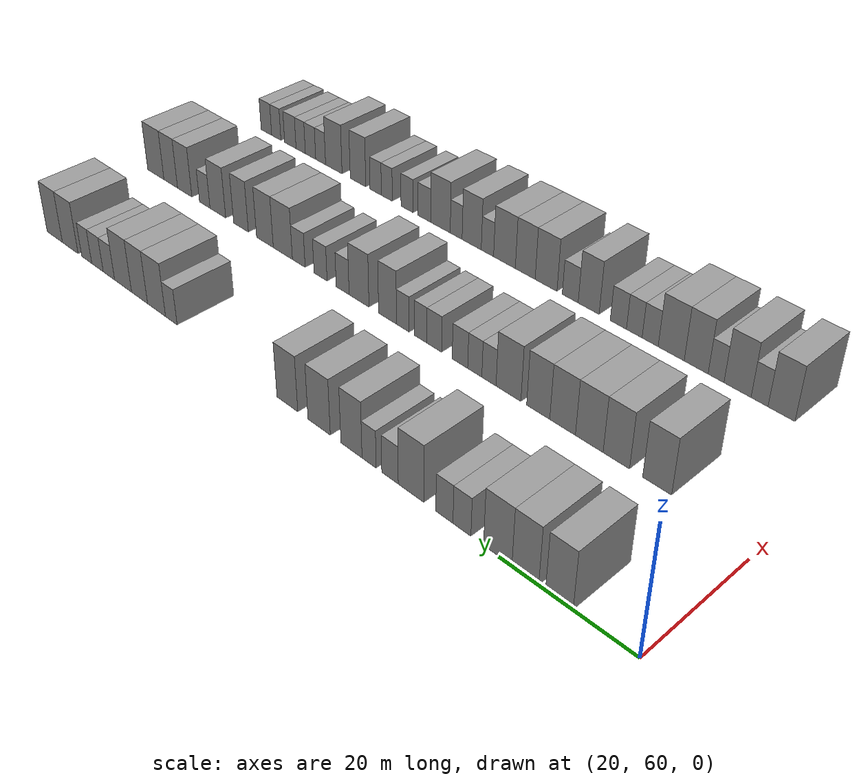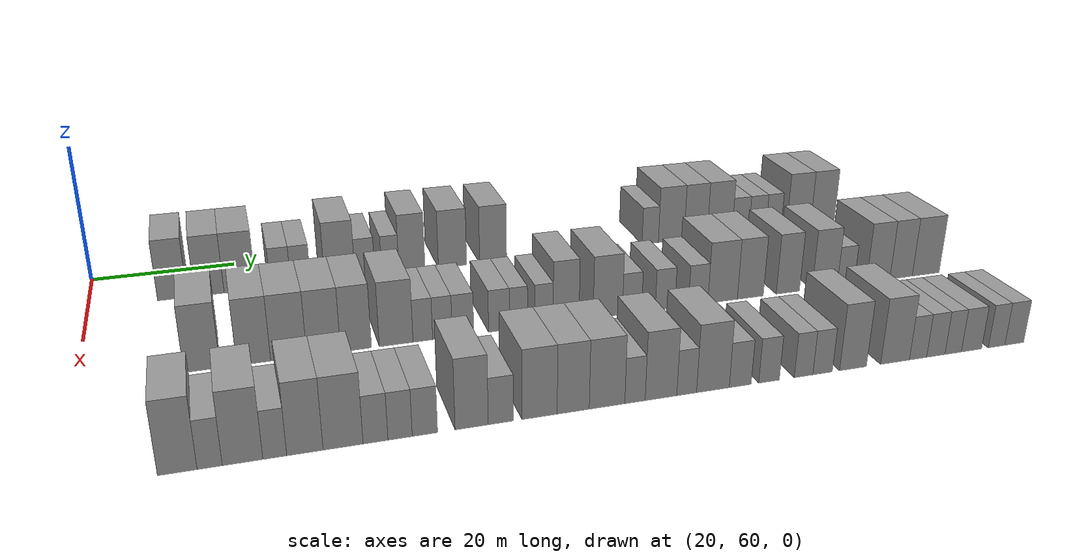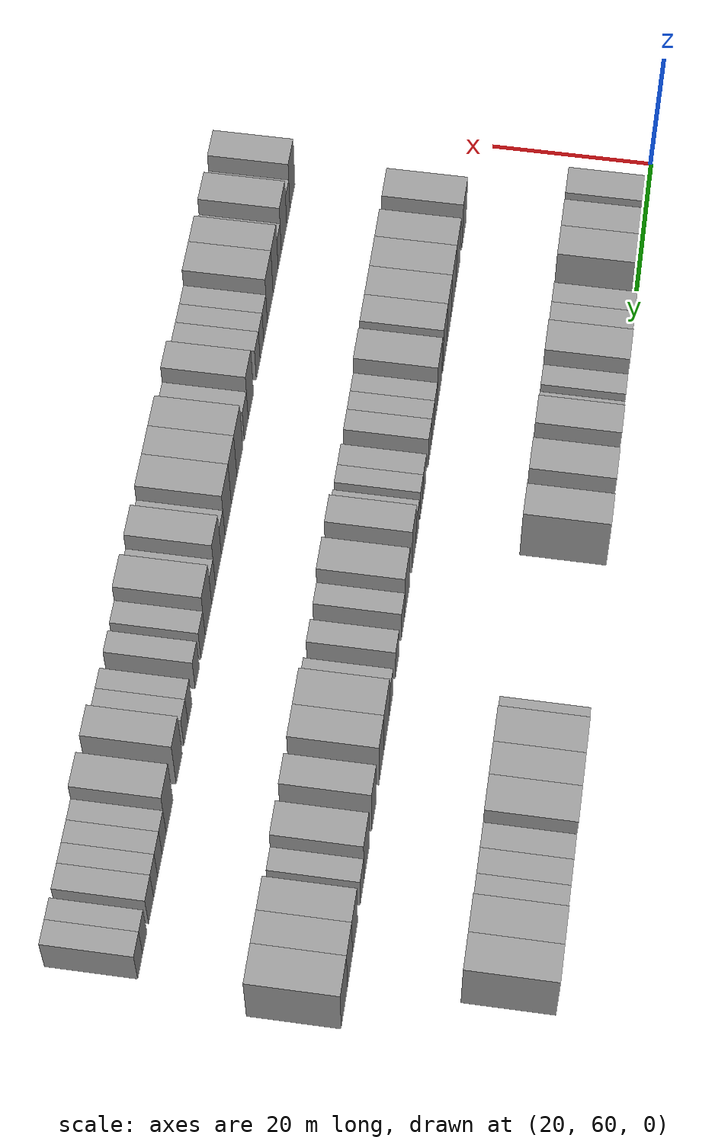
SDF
<sdf version="1.6">
 <world name="default">
  <model name="building_113">
   <static>1</static>
   <pose>25.0000 71.1456 0 0.000000 0.000000 0.000000</pose>
   <link name="link">
    <pose>0 0 4.50 0 0 0</pose>
    <collision name="collision"><geometry><box><size>10.0000 3.9665 9.0000</size></box></geometry></collision>
    <visual name="visual">
     <cast_shadows>0</cast_shadows>
     <geometry><box><size>10.0000 3.9665 9.0000</size></box></geometry>
     <material>
      <script>
       <uri>model://grey_wall/materials/scripts</uri>
       <uri>model://grey_wall/materials/textures</uri>
       <name>vrc/grey_wall</name>
      </script>
     </material>
    </visual>
   </link>
  </model>
  <model name="building_114">
   <static>1</static>
   <pose>25.0000 76.1323 0 0.000000 0.000000 0.000000</pose>
   <link name="link">
    <pose>0 0 4.50 0 0 0</pose>
    <collision name="collision"><geometry><box><size>10.0000 4.0069 9.0000</size></box></geometry></collision>
    <visual name="visual">
     <cast_shadows>0</cast_shadows>
     <geometry><box><size>10.0000 4.0069 9.0000</size></box></geometry>
     <material>
      <script>
       <uri>model://grey_wall/materials/scripts</uri>
       <uri>model://grey_wall/materials/textures</uri>
       <name>vrc/grey_wall</name>
      </script>
     </material>
    </visual>
   </link>
  </model>
  <model name="building_115">
   <static>1</static>
   <pose>25.0000 80.3190 0 0.000000 0.000000 0.000000</pose>
   <link name="link">
    <pose>0 0 4.50 0 0 0</pose>
    <collision name="collision"><geometry><box><size>10.0000 4.3665 9.0000</size></box></geometry></collision>
    <visual name="visual">
     <cast_shadows>0</cast_shadows>
     <geometry><box><size>10.0000 4.3665 9.0000</size></box></geometry>
     <material>
      <script>
       <uri>model://grey_wall/materials/scripts</uri>
       <uri>model://grey_wall/materials/textures</uri>
       <name>vrc/grey_wall</name>
      </script>
     </material>
    </visual>
   </link>
  </model>
  <model name="building_116">
   <static>1</static>
   <pose>25.0000 85.9456 0 0.000000 0.000000 0.000000</pose>
   <link name="link">
    <pose>0 0 3.00 0 0 0</pose>
    <collision name="collision"><geometry><box><size>10.0000 2.8868 6.0000</size></box></geometry></collision>
    <visual name="visual">
     <cast_shadows>0</cast_shadows>
     <geometry><box><size>10.0000 2.8868 6.0000</size></box></geometry>
     <material>
      <script>
       <uri>model://grey_wall/materials/scripts</uri>
       <uri>model://grey_wall/materials/textures</uri>
       <name>vrc/grey_wall</name>
      </script>
     </material>
    </visual>
   </link>
  </model>
  <model name="building_117">
   <static>1</static>
   <pose>25.0000 88.7950 0 0.000000 0.000000 0.000000</pose>
   <link name="link">
    <pose>0 0 3.00 0 0 0</pose>
    <collision name="collision"><geometry><box><size>10.0000 2.8119 6.0000</size></box></geometry></collision>
    <visual name="visual">
     <cast_shadows>0</cast_shadows>
     <geometry><box><size>10.0000 2.8119 6.0000</size></box></geometry>
     <material>
      <script>
       <uri>model://grey_wall/materials/scripts</uri>
       <uri>model://grey_wall/materials/textures</uri>
       <name>vrc/grey_wall</name>
      </script>
     </material>
    </visual>
   </link>
  </model>
  <model name="building_118">
   <static>1</static>
   <pose>25.0000 94.3874 0 0.000000 0.000000 0.000000</pose>
   <link name="link">
    <pose>0 0 4.50 0 0 0</pose>
    <collision name="collision"><geometry><box><size>10.0000 4.3730 9.0000</size></box></geometry></collision>
    <visual name="visual">
     <cast_shadows>0</cast_shadows>
     <geometry><box><size>10.0000 4.3730 9.0000</size></box></geometry>
     <material>
      <script>
       <uri>model://grey_wall/materials/scripts</uri>
       <uri>model://grey_wall/materials/textures</uri>
       <name>vrc/grey_wall</name>
      </script>
     </material>
    </visual>
   </link>
  </model>
  <model name="building_119">
   <static>1</static>
   <pose>25.0000 98.0199 0 0.000000 0.000000 0.000000</pose>
   <link name="link">
    <pose>0 0 3.00 0 0 0</pose>
    <collision name="collision"><geometry><box><size>10.0000 2.8920 6.0000</size></box></geometry></collision>
    <visual name="visual">
     <cast_shadows>0</cast_shadows>
     <geometry><box><size>10.0000 2.8920 6.0000</size></box></geometry>
     <material>
      <script>
       <uri>model://grey_wall/materials/scripts</uri>
       <uri>model://grey_wall/materials/textures</uri>
       <name>vrc/grey_wall</name>
      </script>
     </material>
    </visual>
   </link>
  </model>
  <model name="building_120">
   <static>1</static>
   <pose>25.0000 101.7340 0 0.000000 0.000000 0.000000</pose>
   <link name="link">
    <pose>0 0 3.00 0 0 0</pose>
    <collision name="collision"><geometry><box><size>10.0000 2.5364 6.0000</size></box></geometry></collision>
    <visual name="visual">
     <cast_shadows>0</cast_shadows>
     <geometry><box><size>10.0000 2.5364 6.0000</size></box></geometry>
     <material>
      <script>
       <uri>model://grey_wall/materials/scripts</uri>
       <uri>model://grey_wall/materials/textures</uri>
       <name>vrc/grey_wall</name>
      </script>
     </material>
    </visual>
   </link>
  </model>
  <model name="building_121">
   <static>1</static>
   <pose>25.0000 104.9441 0 0.000000 0.000000 0.000000</pose>
   <link name="link">
    <pose>0 0 4.50 0 0 0</pose>
    <collision name="collision"><geometry><box><size>10.0000 3.8837 9.0000</size></box></geometry></collision>
    <visual name="visual">
     <cast_shadows>0</cast_shadows>
     <geometry><box><size>10.0000 3.8837 9.0000</size></box></geometry>
     <material>
      <script>
       <uri>model://grey_wall/materials/scripts</uri>
       <uri>model://grey_wall/materials/textures</uri>
       <name>vrc/grey_wall</name>
      </script>
     </material>
    </visual>
   </link>
  </model>
  <model name="building_122">
   <static>1</static>
   <pose>25.0000 111.0240 0 0.000000 0.000000 0.000000</pose>
   <link name="link">
    <pose>0 0 4.50 0 0 0</pose>
    <collision name="collision"><geometry><box><size>10.0000 4.2762 9.0000</size></box></geometry></collision>
    <visual name="visual">
     <cast_shadows>0</cast_shadows>
     <geometry><box><size>10.0000 4.2762 9.0000</size></box></geometry>
     <material>
      <script>
       <uri>model://grey_wall/materials/scripts</uri>
       <uri>model://grey_wall/materials/textures</uri>
       <name>vrc/grey_wall</name>
      </script>
     </material>
    </visual>
   </link>
  </model>
  <model name="building_123">
   <static>1</static>
   <pose>25.0000 117.2384 0 0.000000 0.000000 0.000000</pose>
   <link name="link">
    <pose>0 0 4.50 0 0 0</pose>
    <collision name="collision"><geometry><box><size>10.0000 4.1526 9.0000</size></box></geometry></collision>
    <visual name="visual">
     <cast_shadows>0</cast_shadows>
     <geometry><box><size>10.0000 4.1526 9.0000</size></box></geometry>
     <material>
      <script>
       <uri>model://grey_wall/materials/scripts</uri>
       <uri>model://grey_wall/materials/textures</uri>
       <name>vrc/grey_wall</name>
      </script>
     </material>
    </visual>
   </link>
  </model>
  <model name="building_124">
   <static>1</static>
   <pose>25.0000 142.3898 0 0.000000 0.000000 0.000000</pose>
   <link name="link">
    <pose>0 0 3.00 0 0 0</pose>
    <collision name="collision"><geometry><box><size>10.0000 2.7167 6.0000</size></box></geometry></collision>
    <visual name="visual">
     <cast_shadows>0</cast_shadows>
     <geometry><box><size>10.0000 2.7167 6.0000</size></box></geometry>
     <material>
      <script>
       <uri>model://grey_wall/materials/scripts</uri>
       <uri>model://grey_wall/materials/textures</uri>
       <name>vrc/grey_wall</name>
      </script>
     </material>
    </visual>
   </link>
  </model>
  <model name="building_125">
   <static>1</static>
   <pose>25.0000 145.9043 0 0.000000 0.000000 0.000000</pose>
   <link name="link">
    <pose>0 0 4.50 0 0 0</pose>
    <collision name="collision"><geometry><box><size>10.0000 4.3124 9.0000</size></box></geometry></collision>
    <visual name="visual">
     <cast_shadows>0</cast_shadows>
     <geometry><box><size>10.0000 4.3124 9.0000</size></box></geometry>
     <material>
      <script>
       <uri>model://grey_wall/materials/scripts</uri>
       <uri>model://grey_wall/materials/textures</uri>
       <name>vrc/grey_wall</name>
      </script>
     </material>
    </visual>
   </link>
  </model>
  <model name="building_126">
   <static>1</static>
   <pose>25.0000 150.0240 0 0.000000 0.000000 0.000000</pose>
   <link name="link">
    <pose>0 0 4.50 0 0 0</pose>
    <collision name="collision"><geometry><box><size>10.0000 3.9271 9.0000</size></box></geometry></collision>
    <visual name="visual">
     <cast_shadows>0</cast_shadows>
     <geometry><box><size>10.0000 3.9271 9.0000</size></box></geometry>
     <material>
      <script>
       <uri>model://grey_wall/materials/scripts</uri>
       <uri>model://grey_wall/materials/textures</uri>
       <name>vrc/grey_wall</name>
      </script>
     </material>
    </visual>
   </link>
  </model>
  <model name="building_127">
   <static>1</static>
   <pose>25.0000 154.1258 0 0.000000 0.000000 0.000000</pose>
   <link name="link">
    <pose>0 0 4.50 0 0 0</pose>
    <collision name="collision"><geometry><box><size>10.0000 4.2764 9.0000</size></box></geometry></collision>
    <visual name="visual">
     <cast_shadows>0</cast_shadows>
     <geometry><box><size>10.0000 4.2764 9.0000</size></box></geometry>
     <material>
      <script>
       <uri>model://grey_wall/materials/scripts</uri>
       <uri>model://grey_wall/materials/textures</uri>
       <name>vrc/grey_wall</name>
      </script>
     </material>
    </visual>
   </link>
  </model>
  <model name="building_128">
   <static>1</static>
   <pose>25.0000 157.7301 0 0.000000 0.000000 0.000000</pose>
   <link name="link">
    <pose>0 0 3.00 0 0 0</pose>
    <collision name="collision"><geometry><box><size>10.0000 2.9322 6.0000</size></box></geometry></collision>
    <visual name="visual">
     <cast_shadows>0</cast_shadows>
     <geometry><box><size>10.0000 2.9322 6.0000</size></box></geometry>
     <material>
      <script>
       <uri>model://grey_wall/materials/scripts</uri>
       <uri>model://grey_wall/materials/textures</uri>
       <name>vrc/grey_wall</name>
      </script>
     </material>
    </visual>
   </link>
  </model>
  <model name="building_129">
   <static>1</static>
   <pose>25.0000 160.6939 0 0.000000 0.000000 0.000000</pose>
   <link name="link">
    <pose>0 0 3.00 0 0 0</pose>
    <collision name="collision"><geometry><box><size>10.0000 2.9956 6.0000</size></box></geometry></collision>
    <visual name="visual">
     <cast_shadows>0</cast_shadows>
     <geometry><box><size>10.0000 2.9956 6.0000</size></box></geometry>
     <material>
      <script>
       <uri>model://grey_wall/materials/scripts</uri>
       <uri>model://grey_wall/materials/textures</uri>
       <name>vrc/grey_wall</name>
      </script>
     </material>
    </visual>
   </link>
  </model>
  <model name="building_130">
   <static>1</static>
   <pose>25.0000 163.5191 0 0.000000 0.000000 0.000000</pose>
   <link name="link">
    <pose>0 0 3.00 0 0 0</pose>
    <collision name="collision"><geometry><box><size>10.0000 2.6548 6.0000</size></box></geometry></collision>
    <visual name="visual">
     <cast_shadows>0</cast_shadows>
     <geometry><box><size>10.0000 2.6548 6.0000</size></box></geometry>
     <material>
      <script>
       <uri>model://grey_wall/materials/scripts</uri>
       <uri>model://grey_wall/materials/textures</uri>
       <name>vrc/grey_wall</name>
      </script>
     </material>
    </visual>
   </link>
  </model>
  <model name="building_131">
   <static>1</static>
   <pose>25.0000 167.9849 0 0.000000 0.000000 0.000000</pose>
   <link name="link">
    <pose>0 0 4.50 0 0 0</pose>
    <collision name="collision"><geometry><box><size>10.0000 4.2767 9.0000</size></box></geometry></collision>
    <visual name="visual">
     <cast_shadows>0</cast_shadows>
     <geometry><box><size>10.0000 4.2767 9.0000</size></box></geometry>
     <material>
      <script>
       <uri>model://grey_wall/materials/scripts</uri>
       <uri>model://grey_wall/materials/textures</uri>
       <name>vrc/grey_wall</name>
      </script>
     </material>
    </visual>
   </link>
  </model>
  <model name="building_132">
   <static>1</static>
   <pose>25.0000 172.2452 0 0.000000 0.000000 0.000000</pose>
   <link name="link">
    <pose>0 0 4.50 0 0 0</pose>
    <collision name="collision"><geometry><box><size>10.0000 4.2440 9.0000</size></box></geometry></collision>
    <visual name="visual">
     <cast_shadows>0</cast_shadows>
     <geometry><box><size>10.0000 4.2440 9.0000</size></box></geometry>
     <material>
      <script>
       <uri>model://grey_wall/materials/scripts</uri>
       <uri>model://grey_wall/materials/textures</uri>
       <name>vrc/grey_wall</name>
      </script>
     </material>
    </visual>
   </link>
  </model>
  <model name="building_301">
   <static>1</static>
   <pose>47.0000 74.5888 0 0.000000 0.000000 0.000000</pose>
   <link name="link">
    <pose>0 0 4.50 0 0 0</pose>
    <collision name="collision"><geometry><box><size>10.0000 4.3350 9.0000</size></box></geometry></collision>
    <visual name="visual">
     <cast_shadows>0</cast_shadows>
     <geometry><box><size>10.0000 4.3350 9.0000</size></box></geometry>
     <material>
      <script>
       <uri>model://grey_wall/materials/scripts</uri>
       <uri>model://grey_wall/materials/textures</uri>
       <name>vrc/grey_wall</name>
      </script>
     </material>
    </visual>
   </link>
  </model>
  <model name="building_302">
   <static>1</static>
   <pose>47.0000 80.8239 0 0.000000 0.000000 0.000000</pose>
   <link name="link">
    <pose>0 0 4.50 0 0 0</pose>
    <collision name="collision"><geometry><box><size>10.0000 4.1350 9.0000</size></box></geometry></collision>
    <visual name="visual">
     <cast_shadows>0</cast_shadows>
     <geometry><box><size>10.0000 4.1350 9.0000</size></box></geometry>
     <material>
      <script>
       <uri>model://grey_wall/materials/scripts</uri>
       <uri>model://grey_wall/materials/textures</uri>
       <name>vrc/grey_wall</name>
      </script>
     </material>
    </visual>
   </link>
  </model>
  <model name="building_303">
   <static>1</static>
   <pose>47.0000 85.1183 0 0.000000 0.000000 0.000000</pose>
   <link name="link">
    <pose>0 0 4.50 0 0 0</pose>
    <collision name="collision"><geometry><box><size>10.0000 4.4538 9.0000</size></box></geometry></collision>
    <visual name="visual">
     <cast_shadows>0</cast_shadows>
     <geometry><box><size>10.0000 4.4538 9.0000</size></box></geometry>
     <material>
      <script>
       <uri>model://grey_wall/materials/scripts</uri>
       <uri>model://grey_wall/materials/textures</uri>
       <name>vrc/grey_wall</name>
      </script>
     </material>
    </visual>
   </link>
  </model>
  <model name="building_304">
   <static>1</static>
   <pose>47.0000 89.4703 0 0.000000 0.000000 0.000000</pose>
   <link name="link">
    <pose>0 0 4.50 0 0 0</pose>
    <collision name="collision"><geometry><box><size>10.0000 4.2503 9.0000</size></box></geometry></collision>
    <visual name="visual">
     <cast_shadows>0</cast_shadows>
     <geometry><box><size>10.0000 4.2503 9.0000</size></box></geometry>
     <material>
      <script>
       <uri>model://grey_wall/materials/scripts</uri>
       <uri>model://grey_wall/materials/textures</uri>
       <name>vrc/grey_wall</name>
      </script>
     </material>
    </visual>
   </link>
  </model>
  <model name="building_305">
   <static>1</static>
   <pose>47.0000 93.5619 0 0.000000 0.000000 0.000000</pose>
   <link name="link">
    <pose>0 0 4.50 0 0 0</pose>
    <collision name="collision"><geometry><box><size>10.0000 3.9329 9.0000</size></box></geometry></collision>
    <visual name="visual">
     <cast_shadows>0</cast_shadows>
     <geometry><box><size>10.0000 3.9329 9.0000</size></box></geometry>
     <material>
      <script>
       <uri>model://grey_wall/materials/scripts</uri>
       <uri>model://grey_wall/materials/textures</uri>
       <name>vrc/grey_wall</name>
      </script>
     </material>
    </visual>
   </link>
  </model>
  <model name="building_306">
   <static>1</static>
   <pose>47.0000 98.7184 0 0.000000 0.000000 0.000000</pose>
   <link name="link">
    <pose>0 0 4.50 0 0 0</pose>
    <collision name="collision"><geometry><box><size>10.0000 4.3802 9.0000</size></box></geometry></collision>
    <visual name="visual">
     <cast_shadows>0</cast_shadows>
     <geometry><box><size>10.0000 4.3802 9.0000</size></box></geometry>
     <material>
      <script>
       <uri>model://grey_wall/materials/scripts</uri>
       <uri>model://grey_wall/materials/textures</uri>
       <name>vrc/grey_wall</name>
      </script>
     </material>
    </visual>
   </link>
  </model>
  <model name="building_307">
   <static>1</static>
   <pose>47.0000 102.1914 0 0.000000 0.000000 0.000000</pose>
   <link name="link">
    <pose>0 0 3.00 0 0 0</pose>
    <collision name="collision"><geometry><box><size>10.0000 2.5658 6.0000</size></box></geometry></collision>
    <visual name="visual">
     <cast_shadows>0</cast_shadows>
     <geometry><box><size>10.0000 2.5658 6.0000</size></box></geometry>
     <material>
      <script>
       <uri>model://grey_wall/materials/scripts</uri>
       <uri>model://grey_wall/materials/textures</uri>
       <name>vrc/grey_wall</name>
      </script>
     </material>
    </visual>
   </link>
  </model>
  <model name="building_308">
   <static>1</static>
   <pose>47.0000 104.7711 0 0.000000 0.000000 0.000000</pose>
   <link name="link">
    <pose>0 0 3.00 0 0 0</pose>
    <collision name="collision"><geometry><box><size>10.0000 2.5935 6.0000</size></box></geometry></collision>
    <visual name="visual">
     <cast_shadows>0</cast_shadows>
     <geometry><box><size>10.0000 2.5935 6.0000</size></box></geometry>
     <material>
      <script>
       <uri>model://grey_wall/materials/scripts</uri>
       <uri>model://grey_wall/materials/textures</uri>
       <name>vrc/grey_wall</name>
      </script>
     </material>
    </visual>
   </link>
  </model>
  <model name="building_309">
   <static>1</static>
   <pose>47.0000 107.5105 0 0.000000 0.000000 0.000000</pose>
   <link name="link">
    <pose>0 0 3.00 0 0 0</pose>
    <collision name="collision"><geometry><box><size>10.0000 2.8855 6.0000</size></box></geometry></collision>
    <visual name="visual">
     <cast_shadows>0</cast_shadows>
     <geometry><box><size>10.0000 2.8855 6.0000</size></box></geometry>
     <material>
      <script>
       <uri>model://grey_wall/materials/scripts</uri>
       <uri>model://grey_wall/materials/textures</uri>
       <name>vrc/grey_wall</name>
      </script>
     </material>
    </visual>
   </link>
  </model>
  <model name="building_310">
   <static>1</static>
   <pose>47.0000 112.3788 0 0.000000 0.000000 0.000000</pose>
   <link name="link">
    <pose>0 0 3.00 0 0 0</pose>
    <collision name="collision"><geometry><box><size>10.0000 2.8510 6.0000</size></box></geometry></collision>
    <visual name="visual">
     <cast_shadows>0</cast_shadows>
     <geometry><box><size>10.0000 2.8510 6.0000</size></box></geometry>
     <material>
      <script>
       <uri>model://grey_wall/materials/scripts</uri>
       <uri>model://grey_wall/materials/textures</uri>
       <name>vrc/grey_wall</name>
      </script>
     </material>
    </visual>
   </link>
  </model>
  <model name="building_311">
   <static>1</static>
   <pose>47.0000 115.0303 0 0.000000 0.000000 0.000000</pose>
   <link name="link">
    <pose>0 0 3.00 0 0 0</pose>
    <collision name="collision"><geometry><box><size>10.0000 2.4521 6.0000</size></box></geometry></collision>
    <visual name="visual">
     <cast_shadows>0</cast_shadows>
     <geometry><box><size>10.0000 2.4521 6.0000</size></box></geometry>
     <material>
      <script>
       <uri>model://grey_wall/materials/scripts</uri>
       <uri>model://grey_wall/materials/textures</uri>
       <name>vrc/grey_wall</name>
      </script>
     </material>
    </visual>
   </link>
  </model>
  <model name="building_312">
   <static>1</static>
   <pose>47.0000 118.5335 0 0.000000 0.000000 0.000000</pose>
   <link name="link">
    <pose>0 0 3.00 0 0 0</pose>
    <collision name="collision"><geometry><box><size>10.0000 2.5543 6.0000</size></box></geometry></collision>
    <visual name="visual">
     <cast_shadows>0</cast_shadows>
     <geometry><box><size>10.0000 2.5543 6.0000</size></box></geometry>
     <material>
      <script>
       <uri>model://grey_wall/materials/scripts</uri>
       <uri>model://grey_wall/materials/textures</uri>
       <name>vrc/grey_wall</name>
      </script>
     </material>
    </visual>
   </link>
  </model>
  <model name="building_313">
   <static>1</static>
   <pose>47.0000 121.6259 0 0.000000 0.000000 0.000000</pose>
   <link name="link">
    <pose>0 0 4.50 0 0 0</pose>
    <collision name="collision"><geometry><box><size>10.0000 3.6306 9.0000</size></box></geometry></collision>
    <visual name="visual">
     <cast_shadows>0</cast_shadows>
     <geometry><box><size>10.0000 3.6306 9.0000</size></box></geometry>
     <material>
      <script>
       <uri>model://grey_wall/materials/scripts</uri>
       <uri>model://grey_wall/materials/textures</uri>
       <name>vrc/grey_wall</name>
      </script>
     </material>
    </visual>
   </link>
  </model>
  <model name="building_314">
   <static>1</static>
   <pose>47.0000 127.5316 0 0.000000 0.000000 0.000000</pose>
   <link name="link">
    <pose>0 0 4.50 0 0 0</pose>
    <collision name="collision"><geometry><box><size>10.0000 4.1809 9.0000</size></box></geometry></collision>
    <visual name="visual">
     <cast_shadows>0</cast_shadows>
     <geometry><box><size>10.0000 4.1809 9.0000</size></box></geometry>
     <material>
      <script>
       <uri>model://grey_wall/materials/scripts</uri>
       <uri>model://grey_wall/materials/textures</uri>
       <name>vrc/grey_wall</name>
      </script>
     </material>
    </visual>
   </link>
  </model>
  <model name="building_315">
   <static>1</static>
   <pose>47.0000 131.0111 0 0.000000 0.000000 0.000000</pose>
   <link name="link">
    <pose>0 0 3.00 0 0 0</pose>
    <collision name="collision"><geometry><box><size>10.0000 2.7779 6.0000</size></box></geometry></collision>
    <visual name="visual">
     <cast_shadows>0</cast_shadows>
     <geometry><box><size>10.0000 2.7779 6.0000</size></box></geometry>
     <material>
      <script>
       <uri>model://grey_wall/materials/scripts</uri>
       <uri>model://grey_wall/materials/textures</uri>
       <name>vrc/grey_wall</name>
      </script>
     </material>
    </visual>
   </link>
  </model>
  <model name="building_316">
   <static>1</static>
   <pose>47.0000 135.8465 0 0.000000 0.000000 0.000000</pose>
   <link name="link">
    <pose>0 0 3.00 0 0 0</pose>
    <collision name="collision"><geometry><box><size>10.0000 2.8929 6.0000</size></box></geometry></collision>
    <visual name="visual">
     <cast_shadows>0</cast_shadows>
     <geometry><box><size>10.0000 2.8929 6.0000</size></box></geometry>
     <material>
      <script>
       <uri>model://grey_wall/materials/scripts</uri>
       <uri>model://grey_wall/materials/textures</uri>
       <name>vrc/grey_wall</name>
      </script>
     </material>
    </visual>
   </link>
  </model>
  <model name="building_317">
   <static>1</static>
   <pose>47.0000 140.7449 0 0.000000 0.000000 0.000000</pose>
   <link name="link">
    <pose>0 0 3.00 0 0 0</pose>
    <collision name="collision"><geometry><box><size>10.0000 2.9039 6.0000</size></box></geometry></collision>
    <visual name="visual">
     <cast_shadows>0</cast_shadows>
     <geometry><box><size>10.0000 2.9039 6.0000</size></box></geometry>
     <material>
      <script>
       <uri>model://grey_wall/materials/scripts</uri>
       <uri>model://grey_wall/materials/textures</uri>
       <name>vrc/grey_wall</name>
      </script>
     </material>
    </visual>
   </link>
  </model>
  <model name="building_318">
   <static>1</static>
   <pose>47.0000 144.4257 0 0.000000 0.000000 0.000000</pose>
   <link name="link">
    <pose>0 0 4.50 0 0 0</pose>
    <collision name="collision"><geometry><box><size>10.0000 4.4578 9.0000</size></box></geometry></collision>
    <visual name="visual">
     <cast_shadows>0</cast_shadows>
     <geometry><box><size>10.0000 4.4578 9.0000</size></box></geometry>
     <material>
      <script>
       <uri>model://grey_wall/materials/scripts</uri>
       <uri>model://grey_wall/materials/textures</uri>
       <name>vrc/grey_wall</name>
      </script>
     </material>
    </visual>
   </link>
  </model>
  <model name="building_319">
   <static>1</static>
   <pose>47.0000 148.6413 0 0.000000 0.000000 0.000000</pose>
   <link name="link">
    <pose>0 0 4.50 0 0 0</pose>
    <collision name="collision"><geometry><box><size>10.0000 3.9733 9.0000</size></box></geometry></collision>
    <visual name="visual">
     <cast_shadows>0</cast_shadows>
     <geometry><box><size>10.0000 3.9733 9.0000</size></box></geometry>
     <material>
      <script>
       <uri>model://grey_wall/materials/scripts</uri>
       <uri>model://grey_wall/materials/textures</uri>
       <name>vrc/grey_wall</name>
      </script>
     </material>
    </visual>
   </link>
  </model>
  <model name="building_320">
   <static>1</static>
   <pose>47.0000 154.4402 0 0.000000 0.000000 0.000000</pose>
   <link name="link">
    <pose>0 0 4.50 0 0 0</pose>
    <collision name="collision"><geometry><box><size>10.0000 3.6245 9.0000</size></box></geometry></collision>
    <visual name="visual">
     <cast_shadows>0</cast_shadows>
     <geometry><box><size>10.0000 3.6245 9.0000</size></box></geometry>
     <material>
      <script>
       <uri>model://grey_wall/materials/scripts</uri>
       <uri>model://grey_wall/materials/textures</uri>
       <name>vrc/grey_wall</name>
      </script>
     </material>
    </visual>
   </link>
  </model>
  <model name="building_321">
   <static>1</static>
   <pose>47.0000 160.2484 0 0.000000 0.000000 0.000000</pose>
   <link name="link">
    <pose>0 0 4.50 0 0 0</pose>
    <collision name="collision"><geometry><box><size>10.0000 3.9920 9.0000</size></box></geometry></collision>
    <visual name="visual">
     <cast_shadows>0</cast_shadows>
     <geometry><box><size>10.0000 3.9920 9.0000</size></box></geometry>
     <material>
      <script>
       <uri>model://grey_wall/materials/scripts</uri>
       <uri>model://grey_wall/materials/textures</uri>
       <name>vrc/grey_wall</name>
      </script>
     </material>
    </visual>
   </link>
  </model>
  <model name="building_322">
   <static>1</static>
   <pose>47.0000 163.6041 0 0.000000 0.000000 0.000000</pose>
   <link name="link">
    <pose>0 0 3.00 0 0 0</pose>
    <collision name="collision"><geometry><box><size>10.0000 2.7194 6.0000</size></box></geometry></collision>
    <visual name="visual">
     <cast_shadows>0</cast_shadows>
     <geometry><box><size>10.0000 2.7194 6.0000</size></box></geometry>
     <material>
      <script>
       <uri>model://grey_wall/materials/scripts</uri>
       <uri>model://grey_wall/materials/textures</uri>
       <name>vrc/grey_wall</name>
      </script>
     </material>
    </visual>
   </link>
  </model>
  <model name="building_323">
   <static>1</static>
   <pose>47.0000 168.8767 0 0.000000 0.000000 0.000000</pose>
   <link name="link">
    <pose>0 0 4.50 0 0 0</pose>
    <collision name="collision"><geometry><box><size>10.0000 3.8259 9.0000</size></box></geometry></collision>
    <visual name="visual">
     <cast_shadows>0</cast_shadows>
     <geometry><box><size>10.0000 3.8259 9.0000</size></box></geometry>
     <material>
      <script>
       <uri>model://grey_wall/materials/scripts</uri>
       <uri>model://grey_wall/materials/textures</uri>
       <name>vrc/grey_wall</name>
      </script>
     </material>
    </visual>
   </link>
  </model>
  <model name="building_324">
   <static>1</static>
   <pose>47.0000 172.6374 0 0.000000 0.000000 0.000000</pose>
   <link name="link">
    <pose>0 0 4.50 0 0 0</pose>
    <collision name="collision"><geometry><box><size>10.0000 3.6955 9.0000</size></box></geometry></collision>
    <visual name="visual">
     <cast_shadows>0</cast_shadows>
     <geometry><box><size>10.0000 3.6955 9.0000</size></box></geometry>
     <material>
      <script>
       <uri>model://grey_wall/materials/scripts</uri>
       <uri>model://grey_wall/materials/textures</uri>
       <name>vrc/grey_wall</name>
      </script>
     </material>
    </visual>
   </link>
  </model>
  <model name="building_325">
   <static>1</static>
   <pose>47.0000 176.7284 0 0.000000 0.000000 0.000000</pose>
   <link name="link">
    <pose>0 0 4.50 0 0 0</pose>
    <collision name="collision"><geometry><box><size>10.0000 4.4867 9.0000</size></box></geometry></collision>
    <visual name="visual">
     <cast_shadows>0</cast_shadows>
     <geometry><box><size>10.0000 4.4867 9.0000</size></box></geometry>
     <material>
      <script>
       <uri>model://grey_wall/materials/scripts</uri>
       <uri>model://grey_wall/materials/textures</uri>
       <name>vrc/grey_wall</name>
      </script>
     </material>
    </visual>
   </link>
  </model>
  <model name="building_494">
   <static>1</static>
   <pose>69.0000 71.5320 0 0.000000 0.000000 0.000000</pose>
   <link name="link">
    <pose>0 0 4.50 0 0 0</pose>
    <collision name="collision"><geometry><box><size>10.0000 4.0279 9.0000</size></box></geometry></collision>
    <visual name="visual">
     <cast_shadows>0</cast_shadows>
     <geometry><box><size>10.0000 4.0279 9.0000</size></box></geometry>
     <material>
      <script>
       <uri>model://grey_wall/materials/scripts</uri>
       <uri>model://grey_wall/materials/textures</uri>
       <name>vrc/grey_wall</name>
      </script>
     </material>
    </visual>
   </link>
  </model>
  <model name="building_495">
   <static>1</static>
   <pose>69.0000 74.8431 0 0.000000 0.000000 0.000000</pose>
   <link name="link">
    <pose>0 0 3.00 0 0 0</pose>
    <collision name="collision"><geometry><box><size>10.0000 2.5943 6.0000</size></box></geometry></collision>
    <visual name="visual">
     <cast_shadows>0</cast_shadows>
     <geometry><box><size>10.0000 2.5943 6.0000</size></box></geometry>
     <material>
      <script>
       <uri>model://grey_wall/materials/scripts</uri>
       <uri>model://grey_wall/materials/textures</uri>
       <name>vrc/grey_wall</name>
      </script>
     </material>
    </visual>
   </link>
  </model>
  <model name="building_496">
   <static>1</static>
   <pose>69.0000 78.2550 0 0.000000 0.000000 0.000000</pose>
   <link name="link">
    <pose>0 0 4.50 0 0 0</pose>
    <collision name="collision"><geometry><box><size>10.0000 4.2295 9.0000</size></box></geometry></collision>
    <visual name="visual">
     <cast_shadows>0</cast_shadows>
     <geometry><box><size>10.0000 4.2295 9.0000</size></box></geometry>
     <material>
      <script>
       <uri>model://grey_wall/materials/scripts</uri>
       <uri>model://grey_wall/materials/textures</uri>
       <name>vrc/grey_wall</name>
      </script>
     </material>
    </visual>
   </link>
  </model>
  <model name="building_497">
   <static>1</static>
   <pose>69.0000 81.6356 0 0.000000 0.000000 0.000000</pose>
   <link name="link">
    <pose>0 0 3.00 0 0 0</pose>
    <collision name="collision"><geometry><box><size>10.0000 2.5318 6.0000</size></box></geometry></collision>
    <visual name="visual">
     <cast_shadows>0</cast_shadows>
     <geometry><box><size>10.0000 2.5318 6.0000</size></box></geometry>
     <material>
      <script>
       <uri>model://grey_wall/materials/scripts</uri>
       <uri>model://grey_wall/materials/textures</uri>
       <name>vrc/grey_wall</name>
      </script>
     </material>
    </visual>
   </link>
  </model>
  <model name="building_498">
   <static>1</static>
   <pose>69.0000 84.8519 0 0.000000 0.000000 0.000000</pose>
   <link name="link">
    <pose>0 0 4.50 0 0 0</pose>
    <collision name="collision"><geometry><box><size>10.0000 3.9007 9.0000</size></box></geometry></collision>
    <visual name="visual">
     <cast_shadows>0</cast_shadows>
     <geometry><box><size>10.0000 3.9007 9.0000</size></box></geometry>
     <material>
      <script>
       <uri>model://grey_wall/materials/scripts</uri>
       <uri>model://grey_wall/materials/textures</uri>
       <name>vrc/grey_wall</name>
      </script>
     </material>
    </visual>
   </link>
  </model>
  <model name="building_499">
   <static>1</static>
   <pose>69.0000 88.9824 0 0.000000 0.000000 0.000000</pose>
   <link name="link">
    <pose>0 0 4.50 0 0 0</pose>
    <collision name="collision"><geometry><box><size>10.0000 4.3603 9.0000</size></box></geometry></collision>
    <visual name="visual">
     <cast_shadows>0</cast_shadows>
     <geometry><box><size>10.0000 4.3603 9.0000</size></box></geometry>
     <material>
      <script>
       <uri>model://grey_wall/materials/scripts</uri>
       <uri>model://grey_wall/materials/textures</uri>
       <name>vrc/grey_wall</name>
      </script>
     </material>
    </visual>
   </link>
  </model>
  <model name="building_500">
   <static>1</static>
   <pose>69.0000 92.5378 0 0.000000 0.000000 0.000000</pose>
   <link name="link">
    <pose>0 0 3.00 0 0 0</pose>
    <collision name="collision"><geometry><box><size>10.0000 2.7504 6.0000</size></box></geometry></collision>
    <visual name="visual">
     <cast_shadows>0</cast_shadows>
     <geometry><box><size>10.0000 2.7504 6.0000</size></box></geometry>
     <material>
      <script>
       <uri>model://grey_wall/materials/scripts</uri>
       <uri>model://grey_wall/materials/textures</uri>
       <name>vrc/grey_wall</name>
      </script>
     </material>
    </visual>
   </link>
  </model>
  <model name="building_501">
   <static>1</static>
   <pose>69.0000 95.2735 0 0.000000 0.000000 0.000000</pose>
   <link name="link">
    <pose>0 0 3.00 0 0 0</pose>
    <collision name="collision"><geometry><box><size>10.0000 2.7210 6.0000</size></box></geometry></collision>
    <visual name="visual">
     <cast_shadows>0</cast_shadows>
     <geometry><box><size>10.0000 2.7210 6.0000</size></box></geometry>
     <material>
      <script>
       <uri>model://grey_wall/materials/scripts</uri>
       <uri>model://grey_wall/materials/textures</uri>
       <name>vrc/grey_wall</name>
      </script>
     </material>
    </visual>
   </link>
  </model>
  <model name="building_502">
   <static>1</static>
   <pose>69.0000 98.0665 0 0.000000 0.000000 0.000000</pose>
   <link name="link">
    <pose>0 0 3.00 0 0 0</pose>
    <collision name="collision"><geometry><box><size>10.0000 2.8650 6.0000</size></box></geometry></collision>
    <visual name="visual">
     <cast_shadows>0</cast_shadows>
     <geometry><box><size>10.0000 2.8650 6.0000</size></box></geometry>
     <material>
      <script>
       <uri>model://grey_wall/materials/scripts</uri>
       <uri>model://grey_wall/materials/textures</uri>
       <name>vrc/grey_wall</name>
      </script>
     </material>
    </visual>
   </link>
  </model>
  <model name="building_503">
   <static>1</static>
   <pose>69.0000 103.4158 0 0.000000 0.000000 0.000000</pose>
   <link name="link">
    <pose>0 0 4.50 0 0 0</pose>
    <collision name="collision"><geometry><box><size>10.0000 3.8335 9.0000</size></box></geometry></collision>
    <visual name="visual">
     <cast_shadows>0</cast_shadows>
     <geometry><box><size>10.0000 3.8335 9.0000</size></box></geometry>
     <material>
      <script>
       <uri>model://grey_wall/materials/scripts</uri>
       <uri>model://grey_wall/materials/textures</uri>
       <name>vrc/grey_wall</name>
      </script>
     </material>
    </visual>
   </link>
  </model>
  <model name="building_504">
   <static>1</static>
   <pose>69.0000 106.8158 0 0.000000 0.000000 0.000000</pose>
   <link name="link">
    <pose>0 0 3.00 0 0 0</pose>
    <collision name="collision"><geometry><box><size>10.0000 2.9665 6.0000</size></box></geometry></collision>
    <visual name="visual">
     <cast_shadows>0</cast_shadows>
     <geometry><box><size>10.0000 2.9665 6.0000</size></box></geometry>
     <material>
      <script>
       <uri>model://grey_wall/materials/scripts</uri>
       <uri>model://grey_wall/materials/textures</uri>
       <name>vrc/grey_wall</name>
      </script>
     </material>
    </visual>
   </link>
  </model>
  <model name="building_505">
   <static>1</static>
   <pose>69.0000 111.3915 0 0.000000 0.000000 0.000000</pose>
   <link name="link">
    <pose>0 0 4.50 0 0 0</pose>
    <collision name="collision"><geometry><box><size>10.0000 4.1850 9.0000</size></box></geometry></collision>
    <visual name="visual">
     <cast_shadows>0</cast_shadows>
     <geometry><box><size>10.0000 4.1850 9.0000</size></box></geometry>
     <material>
      <script>
       <uri>model://grey_wall/materials/scripts</uri>
       <uri>model://grey_wall/materials/textures</uri>
       <name>vrc/grey_wall</name>
      </script>
     </material>
    </visual>
   </link>
  </model>
  <model name="building_506">
   <static>1</static>
   <pose>69.0000 115.4307 0 0.000000 0.000000 0.000000</pose>
   <link name="link">
    <pose>0 0 4.50 0 0 0</pose>
    <collision name="collision"><geometry><box><size>10.0000 3.8934 9.0000</size></box></geometry></collision>
    <visual name="visual">
     <cast_shadows>0</cast_shadows>
     <geometry><box><size>10.0000 3.8934 9.0000</size></box></geometry>
     <material>
      <script>
       <uri>model://grey_wall/materials/scripts</uri>
       <uri>model://grey_wall/materials/textures</uri>
       <name>vrc/grey_wall</name>
      </script>
     </material>
    </visual>
   </link>
  </model>
  <model name="building_507">
   <static>1</static>
   <pose>69.0000 119.5663 0 0.000000 0.000000 0.000000</pose>
   <link name="link">
    <pose>0 0 4.50 0 0 0</pose>
    <collision name="collision"><geometry><box><size>10.0000 4.3779 9.0000</size></box></geometry></collision>
    <visual name="visual">
     <cast_shadows>0</cast_shadows>
     <geometry><box><size>10.0000 4.3779 9.0000</size></box></geometry>
     <material>
      <script>
       <uri>model://grey_wall/materials/scripts</uri>
       <uri>model://grey_wall/materials/textures</uri>
       <name>vrc/grey_wall</name>
      </script>
     </material>
    </visual>
   </link>
  </model>
  <model name="building_508">
   <static>1</static>
   <pose>69.0000 123.0240 0 0.000000 0.000000 0.000000</pose>
   <link name="link">
    <pose>0 0 3.00 0 0 0</pose>
    <collision name="collision"><geometry><box><size>10.0000 2.5374 6.0000</size></box></geometry></collision>
    <visual name="visual">
     <cast_shadows>0</cast_shadows>
     <geometry><box><size>10.0000 2.5374 6.0000</size></box></geometry>
     <material>
      <script>
       <uri>model://grey_wall/materials/scripts</uri>
       <uri>model://grey_wall/materials/textures</uri>
       <name>vrc/grey_wall</name>
      </script>
     </material>
    </visual>
   </link>
  </model>
  <model name="building_509">
   <static>1</static>
   <pose>69.0000 126.2952 0 0.000000 0.000000 0.000000</pose>
   <link name="link">
    <pose>0 0 4.50 0 0 0</pose>
    <collision name="collision"><geometry><box><size>10.0000 4.0049 9.0000</size></box></geometry></collision>
    <visual name="visual">
     <cast_shadows>0</cast_shadows>
     <geometry><box><size>10.0000 4.0049 9.0000</size></box></geometry>
     <material>
      <script>
       <uri>model://grey_wall/materials/scripts</uri>
       <uri>model://grey_wall/materials/textures</uri>
       <name>vrc/grey_wall</name>
      </script>
     </material>
    </visual>
   </link>
  </model>
  <model name="building_510">
   <static>1</static>
   <pose>69.0000 129.5605 0 0.000000 0.000000 0.000000</pose>
   <link name="link">
    <pose>0 0 3.00 0 0 0</pose>
    <collision name="collision"><geometry><box><size>10.0000 2.5258 6.0000</size></box></geometry></collision>
    <visual name="visual">
     <cast_shadows>0</cast_shadows>
     <geometry><box><size>10.0000 2.5258 6.0000</size></box></geometry>
     <material>
      <script>
       <uri>model://grey_wall/materials/scripts</uri>
       <uri>model://grey_wall/materials/textures</uri>
       <name>vrc/grey_wall</name>
      </script>
     </material>
    </visual>
   </link>
  </model>
  <model name="building_511">
   <static>1</static>
   <pose>69.0000 132.9426 0 0.000000 0.000000 0.000000</pose>
   <link name="link">
    <pose>0 0 4.50 0 0 0</pose>
    <collision name="collision"><geometry><box><size>10.0000 4.2384 9.0000</size></box></geometry></collision>
    <visual name="visual">
     <cast_shadows>0</cast_shadows>
     <geometry><box><size>10.0000 4.2384 9.0000</size></box></geometry>
     <material>
      <script>
       <uri>model://grey_wall/materials/scripts</uri>
       <uri>model://grey_wall/materials/textures</uri>
       <name>vrc/grey_wall</name>
      </script>
     </material>
    </visual>
   </link>
  </model>
  <model name="building_512">
   <static>1</static>
   <pose>69.0000 136.5026 0 0.000000 0.000000 0.000000</pose>
   <link name="link">
    <pose>0 0 3.00 0 0 0</pose>
    <collision name="collision"><geometry><box><size>10.0000 2.8816 6.0000</size></box></geometry></collision>
    <visual name="visual">
     <cast_shadows>0</cast_shadows>
     <geometry><box><size>10.0000 2.8816 6.0000</size></box></geometry>
     <material>
      <script>
       <uri>model://grey_wall/materials/scripts</uri>
       <uri>model://grey_wall/materials/textures</uri>
       <name>vrc/grey_wall</name>
      </script>
     </material>
    </visual>
   </link>
  </model>
  <model name="building_513">
   <static>1</static>
   <pose>69.0000 140.3170 0 0.000000 0.000000 0.000000</pose>
   <link name="link">
    <pose>0 0 3.00 0 0 0</pose>
    <collision name="collision"><geometry><box><size>10.0000 2.7472 6.0000</size></box></geometry></collision>
    <visual name="visual">
     <cast_shadows>0</cast_shadows>
     <geometry><box><size>10.0000 2.7472 6.0000</size></box></geometry>
     <material>
      <script>
       <uri>model://grey_wall/materials/scripts</uri>
       <uri>model://grey_wall/materials/textures</uri>
       <name>vrc/grey_wall</name>
      </script>
     </material>
    </visual>
   </link>
  </model>
  <model name="building_514">
   <static>1</static>
   <pose>69.0000 144.9530 0 0.000000 0.000000 0.000000</pose>
   <link name="link">
    <pose>0 0 3.00 0 0 0</pose>
    <collision name="collision"><geometry><box><size>10.0000 2.5248 6.0000</size></box></geometry></collision>
    <visual name="visual">
     <cast_shadows>0</cast_shadows>
     <geometry><box><size>10.0000 2.5248 6.0000</size></box></geometry>
     <material>
      <script>
       <uri>model://grey_wall/materials/scripts</uri>
       <uri>model://grey_wall/materials/textures</uri>
       <name>vrc/grey_wall</name>
      </script>
     </material>
    </visual>
   </link>
  </model>
  <model name="building_515">
   <static>1</static>
   <pose>69.0000 147.5476 0 0.000000 0.000000 0.000000</pose>
   <link name="link">
    <pose>0 0 3.00 0 0 0</pose>
    <collision name="collision"><geometry><box><size>10.0000 2.6645 6.0000</size></box></geometry></collision>
    <visual name="visual">
     <cast_shadows>0</cast_shadows>
     <geometry><box><size>10.0000 2.6645 6.0000</size></box></geometry>
     <material>
      <script>
       <uri>model://grey_wall/materials/scripts</uri>
       <uri>model://grey_wall/materials/textures</uri>
       <name>vrc/grey_wall</name>
      </script>
     </material>
    </visual>
   </link>
  </model>
  <model name="building_516">
   <static>1</static>
   <pose>69.0000 151.7431 0 0.000000 0.000000 0.000000</pose>
   <link name="link">
    <pose>0 0 4.50 0 0 0</pose>
    <collision name="collision"><geometry><box><size>10.0000 3.7267 9.0000</size></box></geometry></collision>
    <visual name="visual">
     <cast_shadows>0</cast_shadows>
     <geometry><box><size>10.0000 3.7267 9.0000</size></box></geometry>
     <material>
      <script>
       <uri>model://grey_wall/materials/scripts</uri>
       <uri>model://grey_wall/materials/textures</uri>
       <name>vrc/grey_wall</name>
      </script>
     </material>
    </visual>
   </link>
  </model>
  <model name="building_517">
   <static>1</static>
   <pose>69.0000 157.6490 0 0.000000 0.000000 0.000000</pose>
   <link name="link">
    <pose>0 0 4.50 0 0 0</pose>
    <collision name="collision"><geometry><box><size>10.0000 4.0850 9.0000</size></box></geometry></collision>
    <visual name="visual">
     <cast_shadows>0</cast_shadows>
     <geometry><box><size>10.0000 4.0850 9.0000</size></box></geometry>
     <material>
      <script>
       <uri>model://grey_wall/materials/scripts</uri>
       <uri>model://grey_wall/materials/textures</uri>
       <name>vrc/grey_wall</name>
      </script>
     </material>
    </visual>
   </link>
  </model>
  <model name="building_518">
   <static>1</static>
   <pose>69.0000 160.9297 0 0.000000 0.000000 0.000000</pose>
   <link name="link">
    <pose>0 0 3.00 0 0 0</pose>
    <collision name="collision"><geometry><box><size>10.0000 2.4764 6.0000</size></box></geometry></collision>
    <visual name="visual">
     <cast_shadows>0</cast_shadows>
     <geometry><box><size>10.0000 2.4764 6.0000</size></box></geometry>
     <material>
      <script>
       <uri>model://grey_wall/materials/scripts</uri>
       <uri>model://grey_wall/materials/textures</uri>
       <name>vrc/grey_wall</name>
      </script>
     </material>
    </visual>
   </link>
  </model>
  <model name="building_519">
   <static>1</static>
   <pose>69.0000 163.4893 0 0.000000 0.000000 0.000000</pose>
   <link name="link">
    <pose>0 0 3.00 0 0 0</pose>
    <collision name="collision"><geometry><box><size>10.0000 2.6428 6.0000</size></box></geometry></collision>
    <visual name="visual">
     <cast_shadows>0</cast_shadows>
     <geometry><box><size>10.0000 2.6428 6.0000</size></box></geometry>
     <material>
      <script>
       <uri>model://grey_wall/materials/scripts</uri>
       <uri>model://grey_wall/materials/textures</uri>
       <name>vrc/grey_wall</name>
      </script>
     </material>
    </visual>
   </link>
  </model>
  <model name="building_520">
   <static>1</static>
   <pose>69.0000 166.0134 0 0.000000 0.000000 0.000000</pose>
   <link name="link">
    <pose>0 0 3.00 0 0 0</pose>
    <collision name="collision"><geometry><box><size>10.0000 2.4055 6.0000</size></box></geometry></collision>
    <visual name="visual">
     <cast_shadows>0</cast_shadows>
     <geometry><box><size>10.0000 2.4055 6.0000</size></box></geometry>
     <material>
      <script>
       <uri>model://grey_wall/materials/scripts</uri>
       <uri>model://grey_wall/materials/textures</uri>
       <name>vrc/grey_wall</name>
      </script>
     </material>
    </visual>
   </link>
  </model>
  <model name="building_521">
   <static>1</static>
   <pose>69.0000 168.7086 0 0.000000 0.000000 0.000000</pose>
   <link name="link">
    <pose>0 0 3.00 0 0 0</pose>
    <collision name="collision"><geometry><box><size>10.0000 2.9849 6.0000</size></box></geometry></collision>
    <visual name="visual">
     <cast_shadows>0</cast_shadows>
     <geometry><box><size>10.0000 2.9849 6.0000</size></box></geometry>
     <material>
      <script>
       <uri>model://grey_wall/materials/scripts</uri>
       <uri>model://grey_wall/materials/textures</uri>
       <name>vrc/grey_wall</name>
      </script>
     </material>
    </visual>
   </link>
  </model>
  <model name="building_522">
   <static>1</static>
   <pose>69.0000 172.4353 0 0.000000 0.000000 0.000000</pose>
   <link name="link">
    <pose>0 0 3.00 0 0 0</pose>
    <collision name="collision"><geometry><box><size>10.0000 2.4683 6.0000</size></box></geometry></collision>
    <visual name="visual">
     <cast_shadows>0</cast_shadows>
     <geometry><box><size>10.0000 2.4683 6.0000</size></box></geometry>
     <material>
      <script>
       <uri>model://grey_wall/materials/scripts</uri>
       <uri>model://grey_wall/materials/textures</uri>
       <name>vrc/grey_wall</name>
      </script>
     </material>
    </visual>
   </link>
  </model>
  <model name="building_523">
   <static>1</static>
   <pose>69.0000 175.0858 0 0.000000 0.000000 0.000000</pose>
   <link name="link">
    <pose>0 0 3.00 0 0 0</pose>
    <collision name="collision"><geometry><box><size>10.0000 2.8328 6.0000</size></box></geometry></collision>
    <visual name="visual">
     <cast_shadows>0</cast_shadows>
     <geometry><box><size>10.0000 2.8328 6.0000</size></box></geometry>
     <material>
      <script>
       <uri>model://grey_wall/materials/scripts</uri>
       <uri>model://grey_wall/materials/textures</uri>
       <name>vrc/grey_wall</name>
      </script>
     </material>
    </visual>
   </link>
  </model>
 </world>
</sdf>
